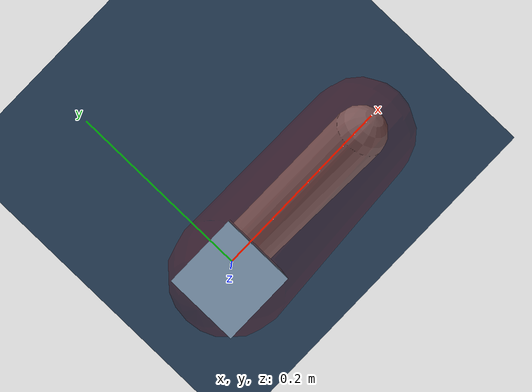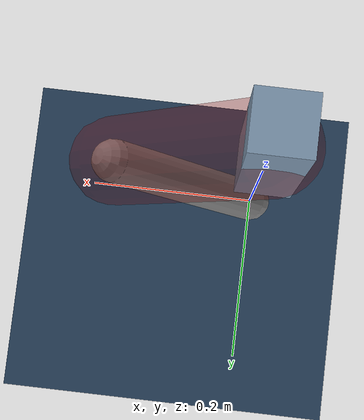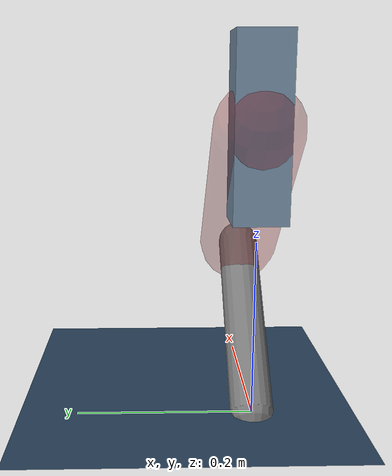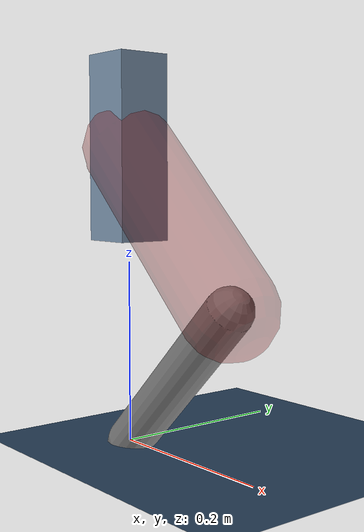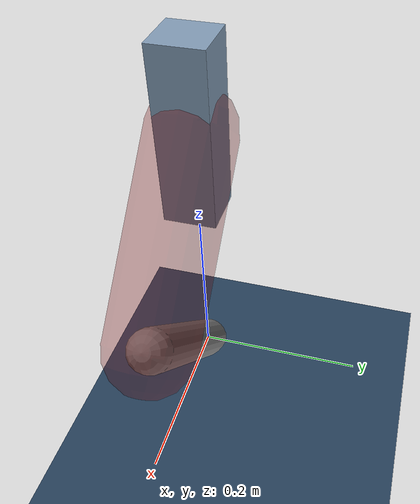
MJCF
<mujoco model="Hopper2D">
	<compiler inertiafromgeom="true" angle="radian" />
	<option timestep="0.001" integrator="implicit" cone="elliptic" solver="Newton" tolerance="1e-10" />

	<default>
		<geom contype="1" conaffinity="1" condim="3" friction="2 0.005 0.0001" solref="0.005 1" />
		<joint limited="true" damping="0.1" />
	</default>

	<asset>
		<texture name="skybox" type="skybox" builtin="gradient" rgb1=".4 .6 .8" rgb2="0 0 0" width="800" height="800" />
		<texture name="grid" type="2d" builtin="checker" rgb1=".1 .2 .3" rgb2=".2 .3 .4" width="300" height="300" mark="edge" markrgb=".2 .3 .4" />
		<material name="ground" texture="grid" texrepeat="1 1" texuniform="true" reflectance="0.1" />
		<material name="leg" rgba="0.5 0.6 0.7 1" />
	</asset>

	<worldbody>

		<geom name="floor" type="plane" size="5 5 0.25" material="ground" />

		<light directional="false" diffuse="0.8 0.8 0.8" specular="0.3 0.3 0.3" pos="0 0 2" dir="0 0 -1" />
		<light mode="targetbodycom" target="base" directional="false" diffuse="0.8 0.8 0.8" specular="0.3 0.3 0.3" pos="0 0 2" dir="0 0 -1" />

		<camera name="fixed" pos="0 -2 1" xyaxes="1 0 0 0 0 1" />
		<camera name="tracking" mode="trackcom" pos="0 -3 1" />

		<body name="root" pos="0 0 0.32384336293726756">
			<joint name="slide_x" type="slide" axis="1 0 0" range="-100 100" />
			<joint name="slide_z" type="slide" axis="0 0 1" range="0 10" />

			<body name="base" pos="0 0 0">
				<geom name="torso" type="box" size="0.03 0.03 0.1" mass="2.846" material="leg" />

				<body name="link1" pos="0 0 0" euler="0 0.7686125440508882 0">
					<joint type="hinge" axis="0 -1 0" pos="0 0 0" name="hinge1" limited="true" range="-3.14 3.14" stiffness="0" damping="0.1" />
					<geom name="thigh" type="capsule" fromto="0 0 0 0.2303878422956276 0 0" size="0.05" rgba="0.5 0 0 0.3" mass="0.8060083899686318" />

					<body name="link2" pos="0.2303878422956276 0 0" euler="0 1.5934375653271258 0">
						<joint type="hinge" axis="0 -1 0" pos="0 0 0" name="hinge2" limited="true" range="-3.14 3.14" stiffness="0" damping="0.1" />
						<geom name="shank" type="capsule" fromto="0 0 0 0.23286285122014852 0 0" size="0.025" mass="0.4283765660981336" />

					</body>
				</body>
			</body>
		</body>
	</worldbody>

	<actuator>
		<motor name="torque1" joint="hinge1" ctrlrange="-99.20274827281412 99.20274827281412" ctrllimited="true" gear="1" />
		<motor name="torque2" joint="hinge2" ctrlrange="-66.73622027526113 66.73622027526113" ctrllimited="true" gear="1" />
	</actuator>
</mujoco>
